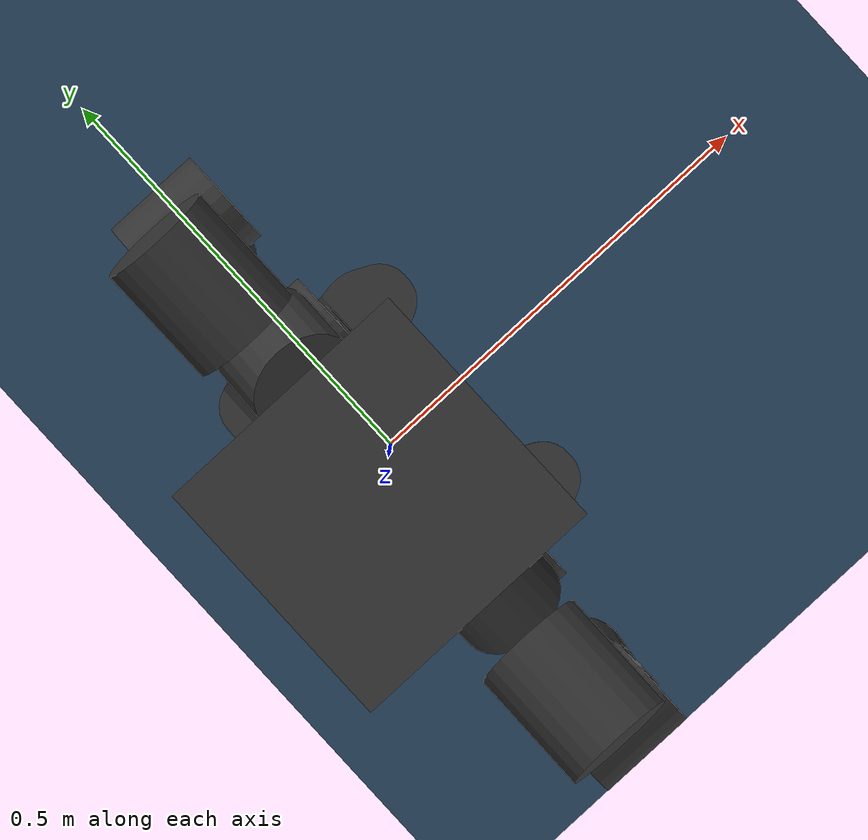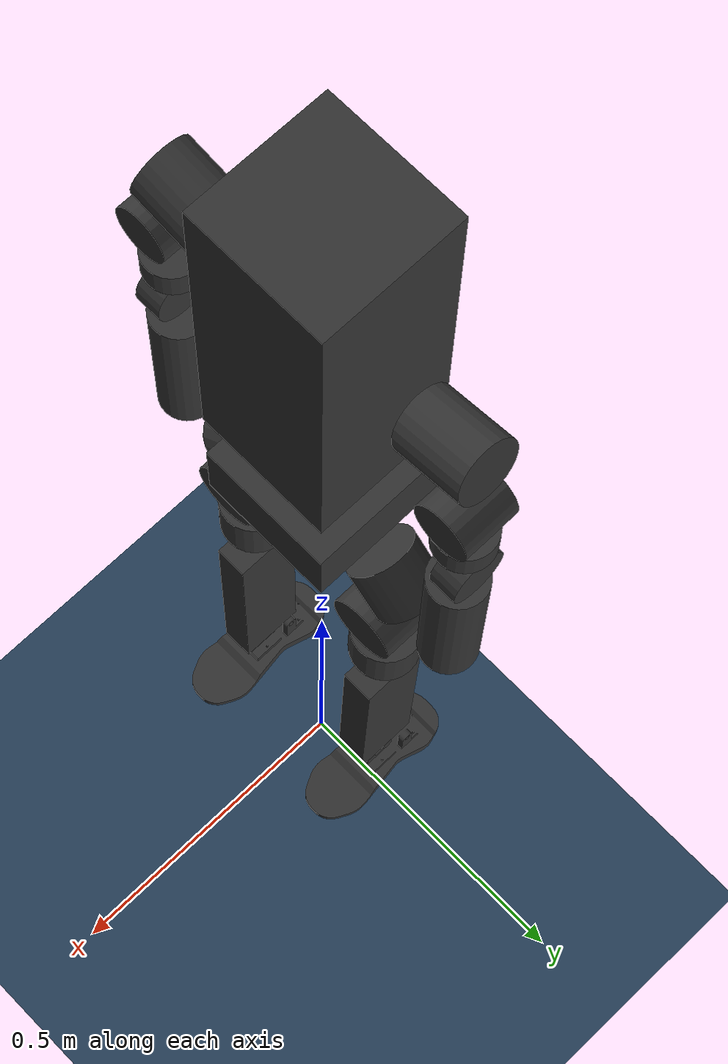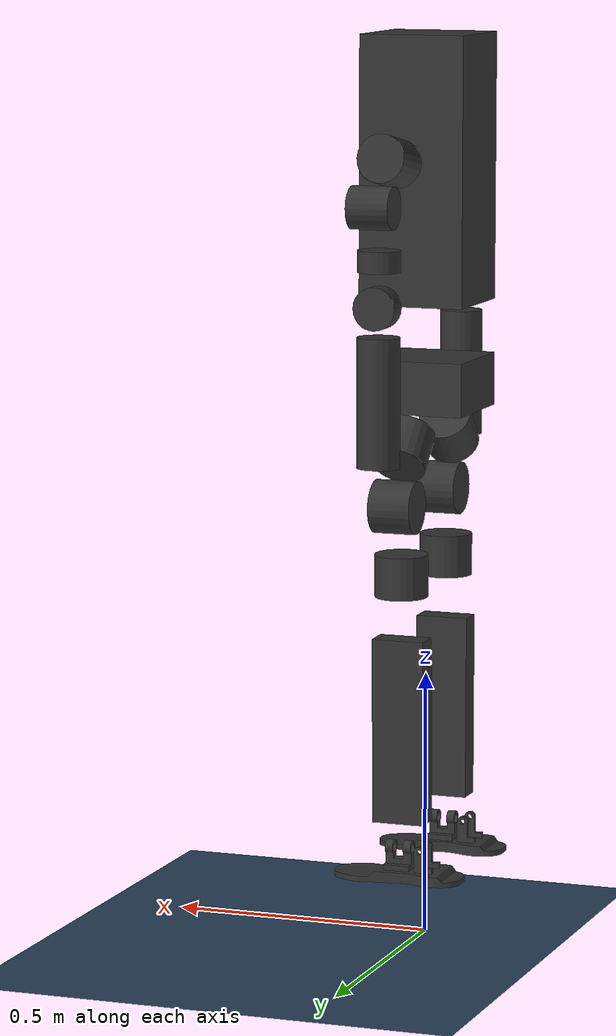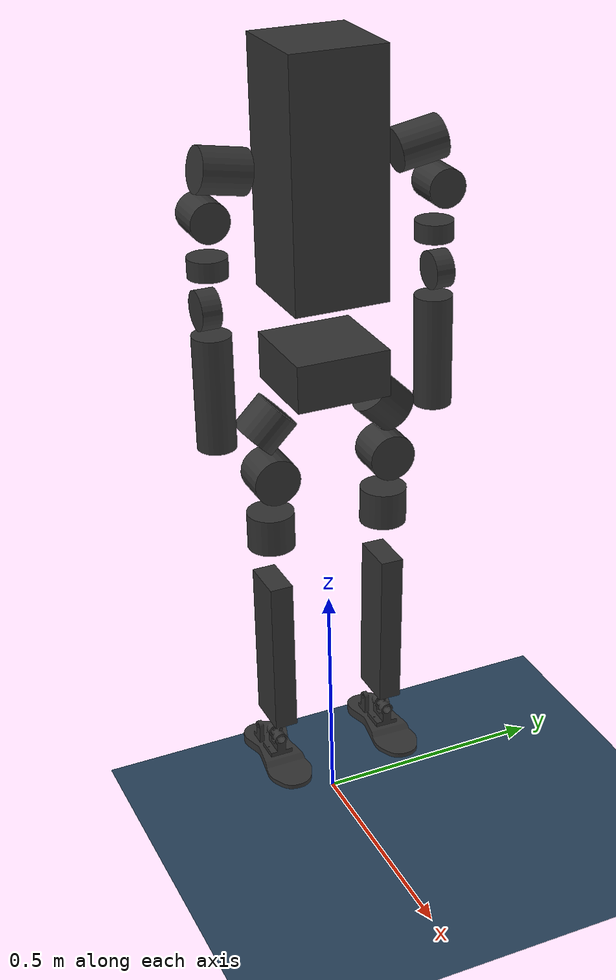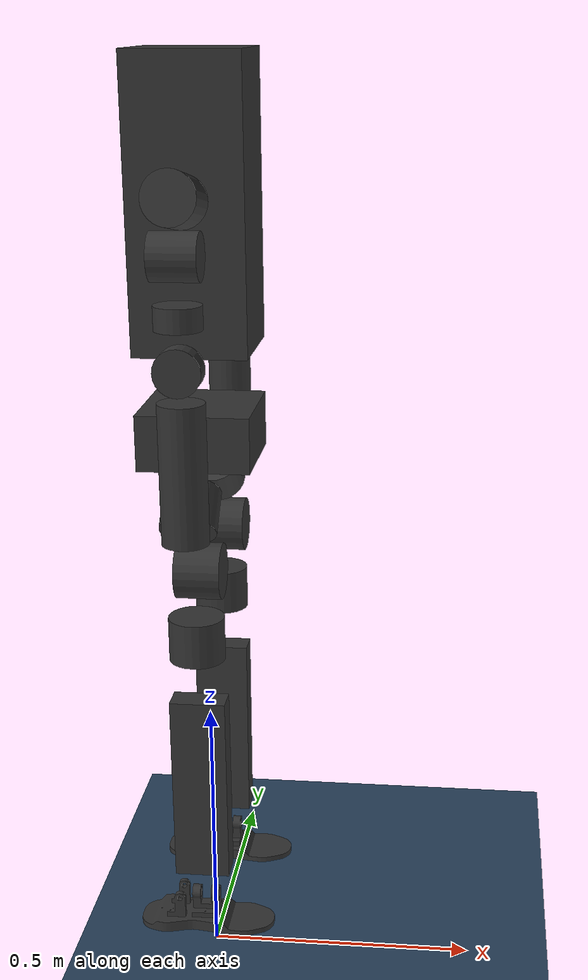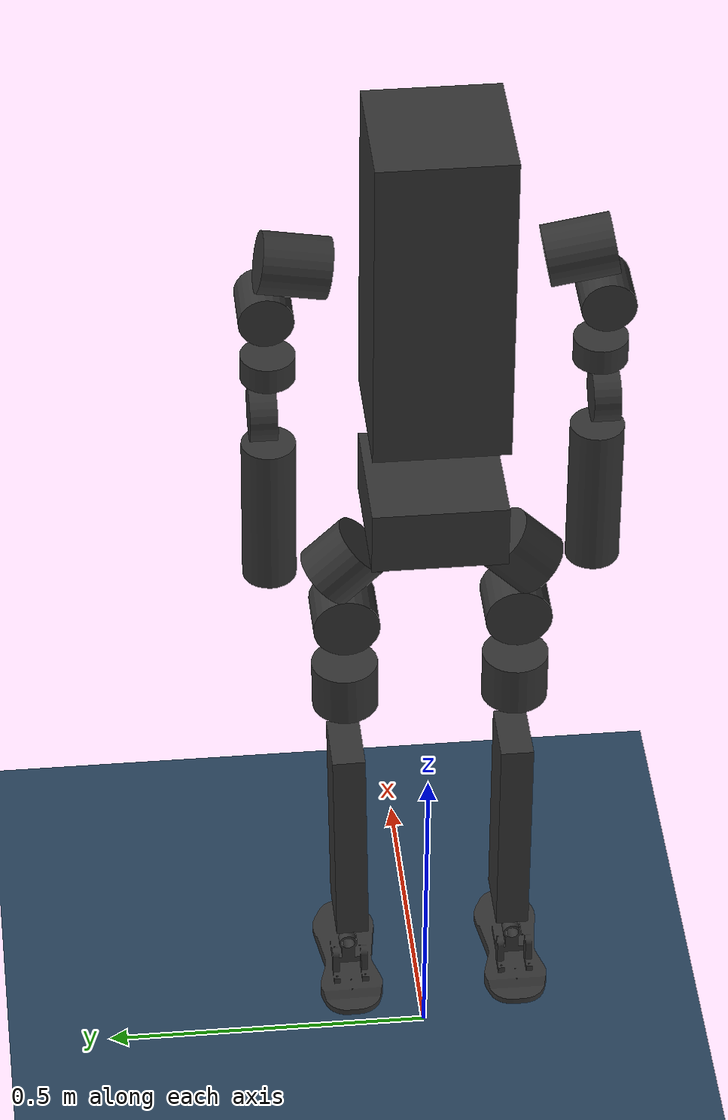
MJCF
<mujoco model="gaia_v1">
    <compiler angle="radian" />
    <option timestep="0.005" gravity="0 0 -9.807" iterations="50" solver="Newton" jacobian="dense" integrator="implicitfast" />

    <visual>
        <headlight diffuse="1 1 1" ambient="0.3 0.3 0.3" specular="0 0 0" />
        <rgba haze="0.15 0.25 0.35 1" />
        <global azimuth="120" elevation="-20" />
    </visual>

    <default>
        <default class="visual">
            <geom contype="0" conaffinity="0" group="2" />
        </default>

        <default class="collision">
            <geom group="3" />
        </default>

        <default class="collision_mesh">
            <geom contype="1" conaffinity="1" group="0" />
        </default>

        <default class='joints'>
            <joint damping="10.0" stiffness="0.0" frictionloss="0.1" armature="0.01" actuatorfrclimited="true" actuatorfrcrange="-1000 1000"/>
        </default>
    </default>

  <worldbody>
    <geom name="groundplane" pos="0 0 0" size="140 140 0.1" type="plane" material="MatPlane" friction="0.8 0.02 0.01" condim="3" solref="0.002 1" solimp="0.9 0.95 0.05" />
      <body name="pelvis_link" pos="0 0 1.105">
      <inertial pos="-0.00132217 0.00027990 -0.05941299" mass="12.59124000" diaginertia="0.05604165 0.06550740 0.08055687" quat="-0.49994928 0.50004500 -0.49996197 -0.50004373" />
      <geom size="0.1 0.1 0.05" pos="0 0 -0.05" type="box" rgba="0.2 0.2 0.2 1" />
      <joint name="pelvis_free_joint" type="free" />
      <site name="imu_site" size="0.01" pos="0.021 0.00025 -0.042"/>

      <body name="torso_link" pos="0 0 0.051" quat="-3.6732e-06 0.0007775 -2.85592e-09 -1">
        <inertial pos="-0.00418444 0.00006168 0.36111506" quat="-0.00001949 0.71525892 -0.00000629 -0.69885955" mass="5.98503000" diaginertia="0.02866646 0.10330475 0.11416227" />
        <joint name="torso_joint" pos="0 0 0" axis="0 0 -1" range="-1 1" class='joints'/>
        <geom size="0.1 0.1 0.25" pos="0 0 0.3" type="box" rgba="0.2 0.2 0.2 1" />
        <body name="imu_link" pos="0.001499 0 0.10699" quat="0 0 0 1">
          <inertial pos="-0.00050800 -0.00000000 -0.06840800" quat="0.70710678 0.00000000 -0.70710678 0.00000000" mass="5.99105000" diaginertia="0.01310893 0.01687664 0.01687664" />
        </body>
        <body name="left_shoulder_pitch_link" pos="-0.0052868 -0.13393 0.3148" quat="0.541666 0.45453 -0.454529 0.541668">
          <inertial pos="0.00004509 0.00105276 0.05973295" quat="0.50380088 0.49691813 0.49602536 0.50320561" mass="1.59740000" diaginertia="0.00146958 0.00184063 0.00214021" />
          <joint name="left_shoulder_pitch_joint" pos="0 0 0" axis="0 0 1" range="-1 1" class='joints' />
          <geom size="0.045 0.05" pos="0 0 0.07" type="cylinder" rgba="0.2 0.2 0.2 1" />
          <body name="left_shoulder_roll_link" pos="0 0.0265 0.06" quat="0.541666 -0.541668 0.454529 0.45453">
            <inertial pos="-0.04586104 0.09887221 -0.01984447" quat="-0.09372726 0.52191845 0.84671522 -0.04347027" mass="1.67000000" diaginertia="0.00166343 0.00328377 0.00343912" />
            <joint name="left_shoulder_roll_joint" pos="0 0 0" axis="0 0 1" range="-0.3 0.8" class='joints' />
            <geom size="0.04 0.04" pos="-0.05 0.08 -0.01" type="cylinder" rgba="0.2 0.2 0.2 1" />
            <body name="left_shoulder_yaw_link" pos="-0.046188 0.1265 -0.02" quat="0.499998 -0.5 -0.5 -0.500002">
              <inertial pos="0.00009212 -0.00970551 0.05477104" quat="-0.48900268 0.51049486 0.51097317 -0.48905807" mass="1.24151000" diaginertia="0.00097270 0.00120640 0.00139018" />
              <joint name="left_shoulder_yaw_joint" pos="0 0 0" axis="0 0 1" range="-0.5 0.5" class='joints' />
              <geom size="0.04 0.02" pos="0 0 0.05" type="cylinder" rgba="0.2 0.2 0.2 1" />
              <body name="left_elbow_pitch_link" pos="0 -0.0335 0.055" quat="0.499998 0.5 0.5 -0.500002">
                <inertial pos="-0.08428398 0.00009847 -0.03348747" quat="0.98197257 0.00000000 0.18902349 0.00000000" mass="1.23675000" diaginertia="0.00101282 0.00175181 0.00177841" />
                <joint name="left_elbow_pitch_joint" pos="0 0 0" axis="0 0 1" range="-1 0" class='joints'/>
                <geom size="0.04 0.02" pos="-0.08 0 -0.025" type="cylinder" rgba="0.2 0.2 0.2 1" />
                <body name="left_elbow_yaw_link" pos="-0.1085 0 -0.0335" quat="0.499998 -0.5 -0.500002 0.5">
                  <inertial pos="-0.00566147 -0.00385283 0.12838810" quat="0.51239204 -0.49087502 -0.49668753 0.49979756" mass="1.97390000" diaginertia="0.00215605 0.01004596 0.01052639" />
                  <joint name="left_elbow_yaw_joint" pos="0 0 0" axis="0 0 1" range="-0.8 0.8" class='joints' />
                  <geom size="0.04 0.12" pos="0 0 0.145" type="cylinder" rgba="0.2 0.2 0.2 1" />
                </body>
              </body>
            </body>
          </body>
        </body>
        <body name="right_shoulder_pitch_link" pos="-0.0052868 0.13393 0.3148" quat="0.541666 -0.45453 -0.454529 -0.541668">
          <inertial pos="-0.00000150 -0.00146478 0.05974120" quat="0.50319383 -0.49603749 -0.49691330 0.50380548" mass="1.59741000" diaginertia="0.00146962 0.00184066 0.00214023" />
          <joint name="right_shoulder_pitch_joint" pos="0 0 0" axis="0 0 -1" range="-1 1" class='joints'/>
          <geom size="0.045 0.05" pos="0 0 0.07" type="cylinder" rgba="0.2 0.2 0.2 1" />
          <body name="right_shoulder_roll_link" pos="0 -0.0265 0.06" quat="0.454528 0.454531 -0.541666 0.541668">
            <inertial pos="0.04583454 0.09922794 -0.01979543" quat="-0.04340061 0.84671869 0.52191388 -0.09375361" mass="1.67002000" diaginertia="0.00166341 0.00328382 0.00343922" />
            <joint name="right_shoulder_roll_joint" pos="0 0 0" axis="0 0 1" range="-0.8 0.3" class='joints' />
            <geom size="0.04 0.04" pos="0.05 0.08 -0.02" type="cylinder" rgba="0.2 0.2 0.2 1" />
            <body name="right_shoulder_yaw_link" pos="0.046188 0.1265 -0.02" quat="0.499998 -0.5 -0.5 -0.500002">
              <inertial pos="0.00006944 0.00970181 0.05494975" quat="0.48906443 0.51096707 0.51048878 0.48900904" mass="1.24151000" diaginertia="0.00097270 0.00120641 0.00139019" />
              <joint name="right_shoulder_yaw_joint" pos="0 0 0" axis="0 0 1" range="-0.5 0.5" class='joints' />
              <geom size="0.04 0.02" pos="0 0 0.05" type="cylinder" rgba="0.2 0.2 0.2 1" />
              <body name="right_elbow_pitch_link" pos="0 0.0335 0.055" quat="0.500391 -0.500407 0.499592 0.499609">
                <inertial pos="-0.08432590 -0.00003259 -0.03347981" quat="0.98197231 -0.00010623 0.18902327 -0.00075872" mass="1.23675000" diaginertia="0.00101282 0.00175180 0.00177841" />
                <joint name="right_elbow_pitch_joint" pos="0 0 0" axis="0 0 -1" range="-1 0" class='joints' />
                <geom size="0.04 0.02" pos="-0.08 0 -0.025" type="cylinder" rgba="0.2 0.2 0.2 1" />
                <body name="right_elbow_yaw_link" pos="-0.1085 -0.00016871 -0.0335" quat="0.500398 0.5004 -0.499602 -0.4996">
                  <inertial pos="-0.00567774 0.00383635 0.12788342" quat="-0.49130609 0.51329187 0.49882972 -0.49630503" mass="1.97390000" diaginertia="0.00214957 0.01004001 0.01051426" />
                  <joint name="right_elbow_yaw_joint" pos="0 0 0" axis="0 0 1" range="-0.8 0.8" class='joints' />
                  <geom size="0.04 0.12" pos="0 0 0.145" type="cylinder" rgba="0.2 0.2 0.2 1" />
                </body>
              </body>
            </body>
          </body>
        </body>
      </body>
      <body name="left_hip_pitch_link" pos="0 0.098995 -0.12569" quat="-0.270602 0.653279 0.653283 0.270596">
        <inertial pos="-0.02575779 0.01377105 0.06836402" quat="0.63861239 -0.60603928 -0.31581419 0.35376831" mass="1.77787000" diaginertia="0.00207198 0.00285362 0.00393199" />
        <joint name="left_hip_pitch_joint" pos="0 0 0" axis="0 0 1" range="-1 1" class='joints' />
        <geom size="0.05 0.04" pos="0 0 0.045" type="cylinder" rgba="0.2 0.2 0.2 1" />
        <body name="left_hip_roll_link" pos="-0.030001 0.039999 0.072" quat="-0.273845 0.273839 -0.65193 -0.651926">
          <inertial pos="-0.00201192 0.12048375 -0.03833076" quat="0.70104440 0.11507729 0.11640390 0.69407788" mass="1.51693000" diaginertia="0.00178459 0.00344915 0.00357128" />
          <joint name="left_hip_roll_joint" pos="0 0 0" axis="0 0 1" range="-0.436332 0.436332" class='joints' />
          <geom size="0.05 0.04" pos="0 0.07 -0.025" type="cylinder" rgba="0.2 0.2 0.2 1" />
          <body name="left_hip_yaw_link" pos="-0.0014671 0.14749 -0.035" quat="0.497517 -0.502469 -0.497519 -0.502471">
            <inertial pos="-0.00426574 0.00035073 0.17104936" quat="0.49585592 0.50415781 0.50410192 0.49581556" mass="2.21688000" diaginertia="0.00247169 0.00859118 0.00993427" />
            <joint name="left_hip_yaw_joint" pos="0 0 0" axis="0 0 1" range="-1 1" class='joints' />
            <geom size="0.05 0.04" pos="0 0 0.05" type="cylinder" rgba="0.2 0.2 0.2 1" />
            <body name="left_knee_link" pos="0 -0.026 0.175" quat="0.499998 0.5 0.5 -0.500002">
              <inertial pos="-0.21107292 -0.01034380 -0.01976493" quat="0.99830610 0.05066096 0.01841972 -0.02188840" mass="4.25926000" diaginertia="0.00617209 0.04946875 0.05094724" />
              <joint name="left_knee_joint" pos="0 0 0" axis="0 0 1" range="0 1" class='joints' />
              <geom size="0.175 0.05 0.025" pos="-0.17 0 -0.025" type="box" rgba="0.2 0.2 0.2 1" />
              <body name="left_ankle_pitch_link" pos="-0.39399 0.002869 -0.02">
                <inertial pos="-0.00000036 0.00000001 0.00034483" quat="0.70710678 0.00000000 -0.00000000 0.70710678" mass="0.04241000" diaginertia="0.00000210 0.00000989 0.00000989" />
                <joint name="left_ankle_pitch_joint" pos="0 0 0" axis="0 0 1" range="-0.6 0.6" class='joints' />
                <body name="left_ankle_roll_link" quat="-0.500004 0.499996 -0.500002 -0.499998">
                  <inertial pos="0.00000029 0.02127772 -0.02280977" quat="0.50823593 -0.49162612 -0.49162612 0.50823593" mass="1.03752000" diaginertia="0.00090987 0.00358313 0.00382703" />
                  <joint name="left_ankle_roll_joint" pos="0 0 0" axis="0 0 1" range="-0.3 0.3" class='joints' />
                  <geom type="mesh" rgba="0.2 0.2 0.2 1" mesh="left_ankle_roll_link" />
                </body>
              </body>
            </body>
          </body>
        </body>
      </body>
      <body name="right_hip_pitch_link" pos="0 -0.098995 -0.12569" quat="-0.270459 -0.652905 0.653657 -0.270739">
        <inertial pos="-0.03408537 -0.01263462 0.07224519" quat="0.34908091 0.31503196 0.60529690 0.64227179" mass="1.87230000" diaginertia="0.00218919 0.00300765 0.00414073" />
        <joint name="right_hip_pitch_joint" pos="0 0 0" axis="0 0 -1" range="-1 1" class='joints' />
        <geom size="0.05 0.04" pos="0 0 0.045" type="cylinder" rgba="0.2 0.2 0.2 1" />
        <body name="right_hip_roll_link" pos="-0.030008 -0.038857 0.071964" quat="0.652908 0.653655 -0.270745 0.270453">
          <inertial pos="-0.00080809 0.12045401 -0.03832059" quat="-0.11565294 0.69758474 -0.69755468 0.11583353" mass="1.51693000" diaginertia="0.00178460 0.00344914 0.00357128" />
          <joint name="right_hip_roll_joint" pos="0 0 0" axis="0 0 1" range="-0.436332 0.436332" class='joints' />
          <geom size="0.05 0.04" pos="0 0.07 -0.025" type="cylinder" rgba="0.2 0.2 0.2 1" />
          <body name="right_hip_yaw_link" pos="0 0.1475 -0.035" quat="0.499998 -0.500002 -0.5 -0.5">
            <inertial pos="0.00460473 -0.00035085 0.17275810" quat="0.50415587 0.49585708 0.49581370 0.50410454" mass="2.21688000" diaginertia="0.00247171 0.00859115 0.00993427" />
            <joint name="right_hip_yaw_joint" pos="0 0 0" axis="0 0 1" range="-1 1" class='joints' />
            <geom size="0.05 0.04" pos="0 0 0.05" type="cylinder" rgba="0.2 0.2 0.2 1" />
            <body name="right_knee_link" pos="0 0.026 0.175" quat="0.5 -0.500002 0.499998 0.5">
              <inertial pos="-0.21469686 0.01003116 -0.01966756" quat="0.99828584 -0.05070337 0.01844737 0.02267684" mass="4.25926000" diaginertia="0.00617110 0.04949373 0.05097134" />
              <joint name="right_knee_joint" pos="0 0 0" axis="0 0 -1" range="0 1" class='joints' />
              <geom size="0.175 0.05 0.025" pos="-0.17 0 -0.025" type="box" rgba="0.2 0.2 0.2 1" />
              <body name="right_ankle_pitch_link" pos="-0.39399 -0.002869 -0.02">
                <inertial pos="-0.00000001 -0.00000000 -0.00034483" quat="0.50032082 -0.50032082 0.49967897 0.49967897" mass="0.04241000" diaginertia="0.00000210 0.00000989 0.00000989" />
                <joint name="right_ankle_pitch_joint" pos="0 0 0" axis="0 0 -1" range="-0.6 0.6" class='joints'/>
                <body name="right_ankle_roll_link" quat="0.500198 0.4998 0.5002 -0.499802">
                  <inertial pos="-0.00008565 -0.02136201 -0.02279415" quat="0.49189185 -0.50796193 0.50850978 -0.49136023" mass="1.03752000" diaginertia="0.00090987 0.00358313 0.00382703" />
                  <joint name="right_ankle_roll_joint" pos="0 0 0" axis="0 0 -1" range="-0.3 0.3" class='joints' />
                  <geom type="mesh" rgba="0.2 0.2 0.2 1" mesh="right_ankle_roll_link" />
                </body>
              </body>
            </body>
          </body>
        </body>
      </body>
    </body>
  </worldbody>

  <actuator>
    <motor joint="left_hip_pitch_joint" name="left_hip_pitch_motor"/>
    <motor joint="right_hip_pitch_joint" name="right_hip_pitch_motor"/>
    <motor joint="torso_joint" name="torso_motor"/>
    <motor joint="left_hip_roll_joint" name="left_hip_roll_motor"/>
    <motor joint="right_hip_roll_joint" name="right_hip_roll_motor"/>
    <motor joint="left_shoulder_pitch_joint" name="left_shoulder_pitch_motor"/>
    <motor joint="right_shoulder_pitch_joint" name="right_shoulder_pitch_motor"/>
    <motor joint="left_hip_yaw_joint" name="left_hip_yaw_motor"/>
    <motor joint="right_hip_yaw_joint" name="right_hip_yaw_motor"/>
    <motor joint="left_shoulder_roll_joint" name="left_shoulder_roll_motor"/>
    <motor joint="right_shoulder_roll_joint" name="right_shoulder_roll_motor"/>
    <motor joint="left_knee_joint" name="left_knee_motor"/>
    <motor joint="right_knee_joint" name="right_knee_motor"/>
    <motor joint="left_shoulder_yaw_joint" name="left_shoulder_yaw_motor"/>
    <motor joint="right_shoulder_yaw_joint" name="right_shoulder_yaw_motor"/>
    <motor joint="left_ankle_pitch_joint" name="left_ankle_pitch_motor"/>
    <motor joint="right_ankle_pitch_joint" name="right_ankle_pitch_motor"/>
    <motor joint="left_elbow_pitch_joint" name="left_elbow_pitch_motor"/>
    <motor joint="right_elbow_pitch_joint" name="right_elbow_pitch_motor"/>
    <motor joint="left_ankle_roll_joint" name="left_ankle_roll_motor"/>
    <motor joint="right_ankle_roll_joint" name="right_ankle_roll_motor"/>
    <motor joint="left_elbow_yaw_joint" name="left_elbow_yaw_motor"/>
    <motor joint="right_elbow_yaw_joint" name="right_elbow_yaw_motor"/>
  </actuator>

  <asset>
    <texture type="skybox" builtin="gradient" rgb1="0.3 0.5 0.7" rgb2="0 0 0" width="512" height="3072" />
    <texture type="2d" name="groundplane" builtin="checker" mark="edge" rgb1="0.2 0.3 0.4" rgb2="0.1 0.2 0.3" markrgb="0.8 0.8 0.8" width="300" height="300" />
    <material name="MatPlane" texture="groundplane" texuniform="true" texrepeat="5 5" reflectance="0.2" />
    <material name="rubber" rgba="0.4 0.4 0.4 1" shininess="0.5" reflectance="0.2" />

    <mesh name="pelvis_link" file="../mesh/pelvis_link.STL" />
    <mesh name="torso_link" file="../mesh/torso_link.STL" />
    <mesh name="imu_link" file="../mesh/imu_link.STL" />
    <mesh name="left_shoulder_pitch_link" file="../mesh/left_shoulder_pitch_link.STL" />
    <mesh name="left_shoulder_roll_link" file="../mesh/left_shoulder_roll_link.STL" />
    <mesh name="left_shoulder_yaw_link" file="../mesh/left_shoulder_yaw_link.STL" />
    <mesh name="left_elbow_pitch_link" file="../mesh/left_elbow_pitch_link.STL" />
    <mesh name="left_elbow_yaw_link" file="../mesh/left_elbow_yaw_link.STL" />
    <mesh name="right_shoulder_pitch_link" file="../mesh/right_shoulder_pitch_link.STL" />
    <mesh name="right_shoulder_roll_link" file="../mesh/right_shoulder_roll_link.STL" />
    <mesh name="right_shoulder_yaw_link" file="../mesh/right_shoulder_yaw_link.STL" />
    <mesh name="right_elbow_pitch_link" file="../mesh/right_elbow_pitch_link.STL" />
    <mesh name="right_elbow_yaw_link" file="../mesh/right_elbow_yaw_link.STL" />
    <mesh name="left_hip_pitch_link" file="../mesh/left_hip_pitch_link.STL" />
    <mesh name="left_hip_roll_link" file="../mesh/left_hip_roll_link.STL" />
    <mesh name="left_hip_yaw_link" file="../mesh/left_hip_yaw_link.STL" />
    <mesh name="left_knee_link" file="../mesh/left_knee_link.STL" />
    <mesh name="left_ankle_pitch_link" file="../mesh/left_ankle_pitch_link.STL" />
    <mesh name="left_ankle_roll_link" file="../mesh/left_ankle_roll_link.STL" />
    <mesh name="right_hip_pitch_link" file="../mesh/right_hip_pitch_link.STL" />
    <mesh name="right_hip_roll_link" file="../mesh/right_hip_roll_link.STL" />
    <mesh name="right_hip_yaw_link" file="../mesh/right_hip_yaw_link.STL" />
    <mesh name="right_knee_link" file="../mesh/right_knee_link.STL" />
    <mesh name="right_ankle_pitch_link" file="../mesh/right_ankle_pitch_link.STL" />
    <mesh name="right_ankle_roll_link" file="../mesh/right_ankle_roll_link.STL" />
  </asset>

  <sensor>
      <framequat name="orientation" objtype="site" noise="0.1" objname="imu_site" />
      <framepos name="position" objtype="site" noise="0.1" objname="imu_site" />
      <gyro name="angular-velocity" site="imu_site" noise="0.2" cutoff="34.9" />
      <velocimeter name="linear-velocity" site="imu_site" noise="0.1" cutoff="30" />
      <accelerometer name="linear-acceleration" site="imu_site" noise="0.05" cutoff="157" />
      <magnetometer name="magnetometer" site="imu_site" />
  </sensor>

</mujoco>
